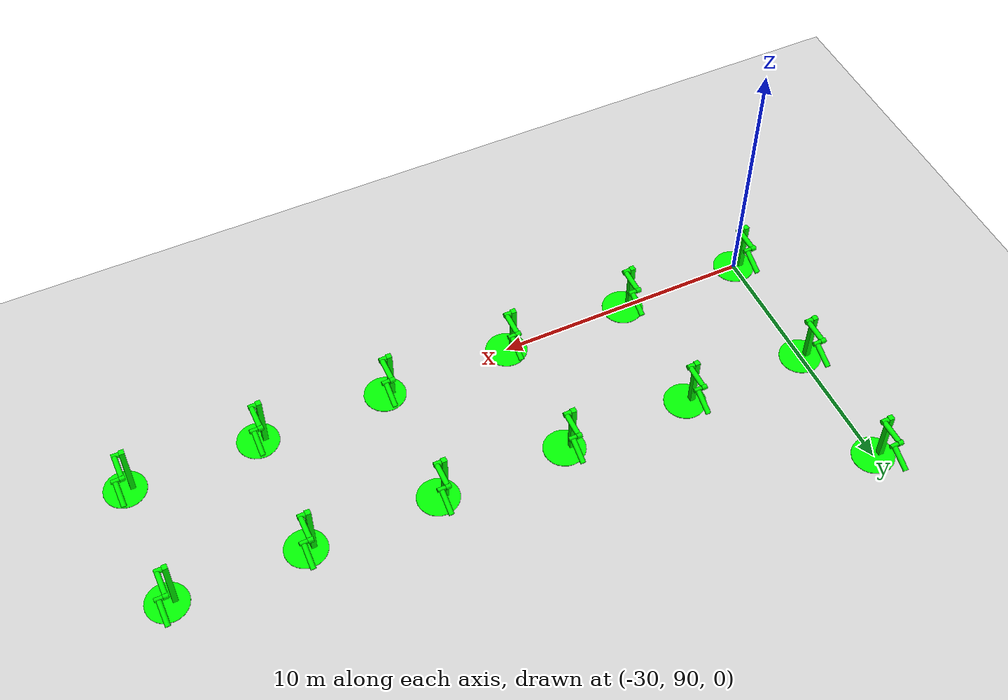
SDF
<sdf version="1.6">
 <world name="double_pendulums">
  <model name="ground_plane">
   <static>true</static>
   <link name="link">
    <collision name="collision">
     <geometry><plane><normal>0 0 1</normal><size>100 100</size></plane></geometry>
    </collision>
    <visual name="visual">
     <geometry><plane><normal>0 0 1</normal><size>100 100</size></plane></geometry>
     <material>
      <ambient>0.8 0.8 0.8 1</ambient>
      <diffuse>0.8 0.8 0.8 1</diffuse>
      <specular>0.8 0.8 0.8 1</specular>
     </material>
    </visual>
   </link>
  </model>
  <model name="dbl_pendulum_454">
   <pose>-30 90 0 0 0 0</pose>
   <link name="base">
    <inertial><mass>100</mass></inertial>
    <visual name="vis_plate_on_ground">
     <pose>0 0 0.01 0 0 0</pose>
     <geometry><cylinder><radius>0.8</radius><length>0.02</length></cylinder></geometry>
     <material><ambient>0 1 0 1</ambient><diffuse>0 1 0 1</diffuse><specular>0 1 0 1</specular></material>
    </visual>
    <visual name="vis_pole">
     <pose>-0.275 0 1.1 0 0 0</pose>
     <geometry><box><size>0.2 0.2 2.2</size></box></geometry>
     <material><ambient>0 1 0 1</ambient><diffuse>0 1 0 1</diffuse><specular>0 1 0 1</specular></material>
    </visual>
    <collision name="col_plate_on_ground">
     <pose>0 0 0.01 0 0 0</pose>
     <geometry><cylinder><radius>0.8</radius><length>0.02</length></cylinder></geometry>
    </collision>
    <collision name="col_pole">
     <pose>-0.275 0 1.1 0 0 0</pose>
     <geometry><box><size>0.2 0.2 2.2</size></box></geometry>
    </collision>
   </link>
   <link name="upper_link">
    <pose>0 0 2.1 -1.5708 0 0</pose>
    <inertial><pose>0 0 0.5 0 0 0</pose></inertial>
    <visual name="vis_upper_joint">
     <pose>-0.05 0 0 0 1.5708 0</pose>
     <geometry><cylinder><radius>0.1</radius><length>0.3</length></cylinder></geometry>
     <material><ambient>0 1 0 1</ambient><diffuse>0 1 0 1</diffuse><specular>0 1 0 1</specular></material>
    </visual>
    <visual name="vis_lower_joint">
     <pose>0 0 1.0 0 1.5708 0</pose>
     <geometry><cylinder><radius>0.1</radius><length>0.2</length></cylinder></geometry>
     <material><ambient>0 1 0 1</ambient><diffuse>0 1 0 1</diffuse><specular>0 1 0 1</specular></material>
    </visual>
    <visual name="vis_cylinder">
     <pose>0 0 0.5 0 0 0</pose>
     <geometry><cylinder><radius>0.1</radius><length>0.9</length></cylinder></geometry>
     <material><ambient>0 1 0 1</ambient><diffuse>0 1 0 1</diffuse><specular>0 1 0 1</specular></material>
    </visual>
    <collision name="col_upper_joint">
     <pose>-0.05 0 0 0 1.5708 0</pose>
     <geometry><cylinder><radius>0.1</radius><length>0.3</length></cylinder></geometry>
    </collision>
    <collision name="col_lower_joint">
     <pose>0 0 1.0 0 1.5708 0</pose>
     <geometry><cylinder><radius>0.1</radius><length>0.2</length></cylinder></geometry>
    </collision>
    <collision name="col_cylinder">
     <pose>0 0 0.5 0 0 0</pose>
     <geometry><cylinder><radius>0.1</radius><length>0.9</length></cylinder></geometry>
    </collision>
   </link>
   <link name="lower_link">
    <pose>0.25 1.0 2.1 -2 0 0</pose>
    <inertial><pose>0 0 0.5 0 0 0</pose></inertial>
    <visual name="vis_lower_joint">
     <pose>0 0 0 0 1.5708 0</pose>
     <geometry><cylinder><radius>0.08</radius><length>0.3</length></cylinder></geometry>
     <material><ambient>0 1 0 1</ambient><diffuse>0 1 0 1</diffuse><specular>0 1 0 1</specular></material>
    </visual>
    <visual name="vis_cylinder">
     <pose>0 0 0.5 0 0 0</pose>
     <geometry><cylinder><radius>0.1</radius><length>0.9</length></cylinder></geometry>
     <material><ambient>0 1 0 1</ambient><diffuse>0 1 0 1</diffuse><specular>0 1 0 1</specular></material>
    </visual>
    <collision name="col_lower_joint">
     <pose>0 0 0 0 1.5708 0</pose>
     <geometry><cylinder><radius>0.08</radius><length>0.3</length></cylinder></geometry>
    </collision>
    <collision name="col_cylinder">
     <pose>0 0 0.5 0 0 0</pose>
     <geometry><cylinder><radius>0.1</radius><length>0.9</length></cylinder></geometry>
    </collision>
   </link>
   <joint name="upper_joint" type="revolute">
    <parent>base</parent>
    <child>upper_link</child>
    <axis><xyz>1.0 0 0</xyz></axis>
   </joint>
   <joint name="lower_joint" type="revolute">
    <parent>upper_link</parent>
    <child>lower_link</child>
    <axis><xyz>1.0 0 0</xyz></axis>
   </joint>
  </model>
  <model name="dbl_pendulum_455">
   <pose>-25 90 0 0 0 0</pose>
   <link name="base">
    <inertial><mass>100</mass></inertial>
    <visual name="vis_plate_on_ground">
     <pose>0 0 0.01 0 0 0</pose>
     <geometry><cylinder><radius>0.8</radius><length>0.02</length></cylinder></geometry>
     <material><ambient>0 1 0 1</ambient><diffuse>0 1 0 1</diffuse><specular>0 1 0 1</specular></material>
    </visual>
    <visual name="vis_pole">
     <pose>-0.275 0 1.1 0 0 0</pose>
     <geometry><box><size>0.2 0.2 2.2</size></box></geometry>
     <material><ambient>0 1 0 1</ambient><diffuse>0 1 0 1</diffuse><specular>0 1 0 1</specular></material>
    </visual>
    <collision name="col_plate_on_ground">
     <pose>0 0 0.01 0 0 0</pose>
     <geometry><cylinder><radius>0.8</radius><length>0.02</length></cylinder></geometry>
    </collision>
    <collision name="col_pole">
     <pose>-0.275 0 1.1 0 0 0</pose>
     <geometry><box><size>0.2 0.2 2.2</size></box></geometry>
    </collision>
   </link>
   <link name="upper_link">
    <pose>0 0 2.1 -1.5708 0 0</pose>
    <inertial><pose>0 0 0.5 0 0 0</pose></inertial>
    <visual name="vis_upper_joint">
     <pose>-0.05 0 0 0 1.5708 0</pose>
     <geometry><cylinder><radius>0.1</radius><length>0.3</length></cylinder></geometry>
     <material><ambient>0 1 0 1</ambient><diffuse>0 1 0 1</diffuse><specular>0 1 0 1</specular></material>
    </visual>
    <visual name="vis_lower_joint">
     <pose>0 0 1.0 0 1.5708 0</pose>
     <geometry><cylinder><radius>0.1</radius><length>0.2</length></cylinder></geometry>
     <material><ambient>0 1 0 1</ambient><diffuse>0 1 0 1</diffuse><specular>0 1 0 1</specular></material>
    </visual>
    <visual name="vis_cylinder">
     <pose>0 0 0.5 0 0 0</pose>
     <geometry><cylinder><radius>0.1</radius><length>0.9</length></cylinder></geometry>
     <material><ambient>0 1 0 1</ambient><diffuse>0 1 0 1</diffuse><specular>0 1 0 1</specular></material>
    </visual>
    <collision name="col_upper_joint">
     <pose>-0.05 0 0 0 1.5708 0</pose>
     <geometry><cylinder><radius>0.1</radius><length>0.3</length></cylinder></geometry>
    </collision>
    <collision name="col_lower_joint">
     <pose>0 0 1.0 0 1.5708 0</pose>
     <geometry><cylinder><radius>0.1</radius><length>0.2</length></cylinder></geometry>
    </collision>
    <collision name="col_cylinder">
     <pose>0 0 0.5 0 0 0</pose>
     <geometry><cylinder><radius>0.1</radius><length>0.9</length></cylinder></geometry>
    </collision>
   </link>
   <link name="lower_link">
    <pose>0.25 1.0 2.1 -2 0 0</pose>
    <inertial><pose>0 0 0.5 0 0 0</pose></inertial>
    <visual name="vis_lower_joint">
     <pose>0 0 0 0 1.5708 0</pose>
     <geometry><cylinder><radius>0.08</radius><length>0.3</length></cylinder></geometry>
     <material><ambient>0 1 0 1</ambient><diffuse>0 1 0 1</diffuse><specular>0 1 0 1</specular></material>
    </visual>
    <visual name="vis_cylinder">
     <pose>0 0 0.5 0 0 0</pose>
     <geometry><cylinder><radius>0.1</radius><length>0.9</length></cylinder></geometry>
     <material><ambient>0 1 0 1</ambient><diffuse>0 1 0 1</diffuse><specular>0 1 0 1</specular></material>
    </visual>
    <collision name="col_lower_joint">
     <pose>0 0 0 0 1.5708 0</pose>
     <geometry><cylinder><radius>0.08</radius><length>0.3</length></cylinder></geometry>
    </collision>
    <collision name="col_cylinder">
     <pose>0 0 0.5 0 0 0</pose>
     <geometry><cylinder><radius>0.1</radius><length>0.9</length></cylinder></geometry>
    </collision>
   </link>
   <joint name="upper_joint" type="revolute">
    <parent>base</parent>
    <child>upper_link</child>
    <axis><xyz>1.0 0 0</xyz></axis>
   </joint>
   <joint name="lower_joint" type="revolute">
    <parent>upper_link</parent>
    <child>lower_link</child>
    <axis><xyz>1.0 0 0</xyz></axis>
   </joint>
  </model>
  <model name="dbl_pendulum_456">
   <pose>-20 90 0 0 0 0</pose>
   <link name="base">
    <inertial><mass>100</mass></inertial>
    <visual name="vis_plate_on_ground">
     <pose>0 0 0.01 0 0 0</pose>
     <geometry><cylinder><radius>0.8</radius><length>0.02</length></cylinder></geometry>
     <material><ambient>0 1 0 1</ambient><diffuse>0 1 0 1</diffuse><specular>0 1 0 1</specular></material>
    </visual>
    <visual name="vis_pole">
     <pose>-0.275 0 1.1 0 0 0</pose>
     <geometry><box><size>0.2 0.2 2.2</size></box></geometry>
     <material><ambient>0 1 0 1</ambient><diffuse>0 1 0 1</diffuse><specular>0 1 0 1</specular></material>
    </visual>
    <collision name="col_plate_on_ground">
     <pose>0 0 0.01 0 0 0</pose>
     <geometry><cylinder><radius>0.8</radius><length>0.02</length></cylinder></geometry>
    </collision>
    <collision name="col_pole">
     <pose>-0.275 0 1.1 0 0 0</pose>
     <geometry><box><size>0.2 0.2 2.2</size></box></geometry>
    </collision>
   </link>
   <link name="upper_link">
    <pose>0 0 2.1 -1.5708 0 0</pose>
    <inertial><pose>0 0 0.5 0 0 0</pose></inertial>
    <visual name="vis_upper_joint">
     <pose>-0.05 0 0 0 1.5708 0</pose>
     <geometry><cylinder><radius>0.1</radius><length>0.3</length></cylinder></geometry>
     <material><ambient>0 1 0 1</ambient><diffuse>0 1 0 1</diffuse><specular>0 1 0 1</specular></material>
    </visual>
    <visual name="vis_lower_joint">
     <pose>0 0 1.0 0 1.5708 0</pose>
     <geometry><cylinder><radius>0.1</radius><length>0.2</length></cylinder></geometry>
     <material><ambient>0 1 0 1</ambient><diffuse>0 1 0 1</diffuse><specular>0 1 0 1</specular></material>
    </visual>
    <visual name="vis_cylinder">
     <pose>0 0 0.5 0 0 0</pose>
     <geometry><cylinder><radius>0.1</radius><length>0.9</length></cylinder></geometry>
     <material><ambient>0 1 0 1</ambient><diffuse>0 1 0 1</diffuse><specular>0 1 0 1</specular></material>
    </visual>
    <collision name="col_upper_joint">
     <pose>-0.05 0 0 0 1.5708 0</pose>
     <geometry><cylinder><radius>0.1</radius><length>0.3</length></cylinder></geometry>
    </collision>
    <collision name="col_lower_joint">
     <pose>0 0 1.0 0 1.5708 0</pose>
     <geometry><cylinder><radius>0.1</radius><length>0.2</length></cylinder></geometry>
    </collision>
    <collision name="col_cylinder">
     <pose>0 0 0.5 0 0 0</pose>
     <geometry><cylinder><radius>0.1</radius><length>0.9</length></cylinder></geometry>
    </collision>
   </link>
   <link name="lower_link">
    <pose>0.25 1.0 2.1 -2 0 0</pose>
    <inertial><pose>0 0 0.5 0 0 0</pose></inertial>
    <visual name="vis_lower_joint">
     <pose>0 0 0 0 1.5708 0</pose>
     <geometry><cylinder><radius>0.08</radius><length>0.3</length></cylinder></geometry>
     <material><ambient>0 1 0 1</ambient><diffuse>0 1 0 1</diffuse><specular>0 1 0 1</specular></material>
    </visual>
    <visual name="vis_cylinder">
     <pose>0 0 0.5 0 0 0</pose>
     <geometry><cylinder><radius>0.1</radius><length>0.9</length></cylinder></geometry>
     <material><ambient>0 1 0 1</ambient><diffuse>0 1 0 1</diffuse><specular>0 1 0 1</specular></material>
    </visual>
    <collision name="col_lower_joint">
     <pose>0 0 0 0 1.5708 0</pose>
     <geometry><cylinder><radius>0.08</radius><length>0.3</length></cylinder></geometry>
    </collision>
    <collision name="col_cylinder">
     <pose>0 0 0.5 0 0 0</pose>
     <geometry><cylinder><radius>0.1</radius><length>0.9</length></cylinder></geometry>
    </collision>
   </link>
   <joint name="upper_joint" type="revolute">
    <parent>base</parent>
    <child>upper_link</child>
    <axis><xyz>1.0 0 0</xyz></axis>
   </joint>
   <joint name="lower_joint" type="revolute">
    <parent>upper_link</parent>
    <child>lower_link</child>
    <axis><xyz>1.0 0 0</xyz></axis>
   </joint>
  </model>
  <model name="dbl_pendulum_457">
   <pose>-15 90 0 0 0 0</pose>
   <link name="base">
    <inertial><mass>100</mass></inertial>
    <visual name="vis_plate_on_ground">
     <pose>0 0 0.01 0 0 0</pose>
     <geometry><cylinder><radius>0.8</radius><length>0.02</length></cylinder></geometry>
     <material><ambient>0 1 0 1</ambient><diffuse>0 1 0 1</diffuse><specular>0 1 0 1</specular></material>
    </visual>
    <visual name="vis_pole">
     <pose>-0.275 0 1.1 0 0 0</pose>
     <geometry><box><size>0.2 0.2 2.2</size></box></geometry>
     <material><ambient>0 1 0 1</ambient><diffuse>0 1 0 1</diffuse><specular>0 1 0 1</specular></material>
    </visual>
    <collision name="col_plate_on_ground">
     <pose>0 0 0.01 0 0 0</pose>
     <geometry><cylinder><radius>0.8</radius><length>0.02</length></cylinder></geometry>
    </collision>
    <collision name="col_pole">
     <pose>-0.275 0 1.1 0 0 0</pose>
     <geometry><box><size>0.2 0.2 2.2</size></box></geometry>
    </collision>
   </link>
   <link name="upper_link">
    <pose>0 0 2.1 -1.5708 0 0</pose>
    <inertial><pose>0 0 0.5 0 0 0</pose></inertial>
    <visual name="vis_upper_joint">
     <pose>-0.05 0 0 0 1.5708 0</pose>
     <geometry><cylinder><radius>0.1</radius><length>0.3</length></cylinder></geometry>
     <material><ambient>0 1 0 1</ambient><diffuse>0 1 0 1</diffuse><specular>0 1 0 1</specular></material>
    </visual>
    <visual name="vis_lower_joint">
     <pose>0 0 1.0 0 1.5708 0</pose>
     <geometry><cylinder><radius>0.1</radius><length>0.2</length></cylinder></geometry>
     <material><ambient>0 1 0 1</ambient><diffuse>0 1 0 1</diffuse><specular>0 1 0 1</specular></material>
    </visual>
    <visual name="vis_cylinder">
     <pose>0 0 0.5 0 0 0</pose>
     <geometry><cylinder><radius>0.1</radius><length>0.9</length></cylinder></geometry>
     <material><ambient>0 1 0 1</ambient><diffuse>0 1 0 1</diffuse><specular>0 1 0 1</specular></material>
    </visual>
    <collision name="col_upper_joint">
     <pose>-0.05 0 0 0 1.5708 0</pose>
     <geometry><cylinder><radius>0.1</radius><length>0.3</length></cylinder></geometry>
    </collision>
    <collision name="col_lower_joint">
     <pose>0 0 1.0 0 1.5708 0</pose>
     <geometry><cylinder><radius>0.1</radius><length>0.2</length></cylinder></geometry>
    </collision>
    <collision name="col_cylinder">
     <pose>0 0 0.5 0 0 0</pose>
     <geometry><cylinder><radius>0.1</radius><length>0.9</length></cylinder></geometry>
    </collision>
   </link>
   <link name="lower_link">
    <pose>0.25 1.0 2.1 -2 0 0</pose>
    <inertial><pose>0 0 0.5 0 0 0</pose></inertial>
    <visual name="vis_lower_joint">
     <pose>0 0 0 0 1.5708 0</pose>
     <geometry><cylinder><radius>0.08</radius><length>0.3</length></cylinder></geometry>
     <material><ambient>0 1 0 1</ambient><diffuse>0 1 0 1</diffuse><specular>0 1 0 1</specular></material>
    </visual>
    <visual name="vis_cylinder">
     <pose>0 0 0.5 0 0 0</pose>
     <geometry><cylinder><radius>0.1</radius><length>0.9</length></cylinder></geometry>
     <material><ambient>0 1 0 1</ambient><diffuse>0 1 0 1</diffuse><specular>0 1 0 1</specular></material>
    </visual>
    <collision name="col_lower_joint">
     <pose>0 0 0 0 1.5708 0</pose>
     <geometry><cylinder><radius>0.08</radius><length>0.3</length></cylinder></geometry>
    </collision>
    <collision name="col_cylinder">
     <pose>0 0 0.5 0 0 0</pose>
     <geometry><cylinder><radius>0.1</radius><length>0.9</length></cylinder></geometry>
    </collision>
   </link>
   <joint name="upper_joint" type="revolute">
    <parent>base</parent>
    <child>upper_link</child>
    <axis><xyz>1.0 0 0</xyz></axis>
   </joint>
   <joint name="lower_joint" type="revolute">
    <parent>upper_link</parent>
    <child>lower_link</child>
    <axis><xyz>1.0 0 0</xyz></axis>
   </joint>
  </model>
  <model name="dbl_pendulum_458">
   <pose>-10 90 0 0 0 0</pose>
   <link name="base">
    <inertial><mass>100</mass></inertial>
    <visual name="vis_plate_on_ground">
     <pose>0 0 0.01 0 0 0</pose>
     <geometry><cylinder><radius>0.8</radius><length>0.02</length></cylinder></geometry>
     <material><ambient>0 1 0 1</ambient><diffuse>0 1 0 1</diffuse><specular>0 1 0 1</specular></material>
    </visual>
    <visual name="vis_pole">
     <pose>-0.275 0 1.1 0 0 0</pose>
     <geometry><box><size>0.2 0.2 2.2</size></box></geometry>
     <material><ambient>0 1 0 1</ambient><diffuse>0 1 0 1</diffuse><specular>0 1 0 1</specular></material>
    </visual>
    <collision name="col_plate_on_ground">
     <pose>0 0 0.01 0 0 0</pose>
     <geometry><cylinder><radius>0.8</radius><length>0.02</length></cylinder></geometry>
    </collision>
    <collision name="col_pole">
     <pose>-0.275 0 1.1 0 0 0</pose>
     <geometry><box><size>0.2 0.2 2.2</size></box></geometry>
    </collision>
   </link>
   <link name="upper_link">
    <pose>0 0 2.1 -1.5708 0 0</pose>
    <inertial><pose>0 0 0.5 0 0 0</pose></inertial>
    <visual name="vis_upper_joint">
     <pose>-0.05 0 0 0 1.5708 0</pose>
     <geometry><cylinder><radius>0.1</radius><length>0.3</length></cylinder></geometry>
     <material><ambient>0 1 0 1</ambient><diffuse>0 1 0 1</diffuse><specular>0 1 0 1</specular></material>
    </visual>
    <visual name="vis_lower_joint">
     <pose>0 0 1.0 0 1.5708 0</pose>
     <geometry><cylinder><radius>0.1</radius><length>0.2</length></cylinder></geometry>
     <material><ambient>0 1 0 1</ambient><diffuse>0 1 0 1</diffuse><specular>0 1 0 1</specular></material>
    </visual>
    <visual name="vis_cylinder">
     <pose>0 0 0.5 0 0 0</pose>
     <geometry><cylinder><radius>0.1</radius><length>0.9</length></cylinder></geometry>
     <material><ambient>0 1 0 1</ambient><diffuse>0 1 0 1</diffuse><specular>0 1 0 1</specular></material>
    </visual>
    <collision name="col_upper_joint">
     <pose>-0.05 0 0 0 1.5708 0</pose>
     <geometry><cylinder><radius>0.1</radius><length>0.3</length></cylinder></geometry>
    </collision>
    <collision name="col_lower_joint">
     <pose>0 0 1.0 0 1.5708 0</pose>
     <geometry><cylinder><radius>0.1</radius><length>0.2</length></cylinder></geometry>
    </collision>
    <collision name="col_cylinder">
     <pose>0 0 0.5 0 0 0</pose>
     <geometry><cylinder><radius>0.1</radius><length>0.9</length></cylinder></geometry>
    </collision>
   </link>
   <link name="lower_link">
    <pose>0.25 1.0 2.1 -2 0 0</pose>
    <inertial><pose>0 0 0.5 0 0 0</pose></inertial>
    <visual name="vis_lower_joint">
     <pose>0 0 0 0 1.5708 0</pose>
     <geometry><cylinder><radius>0.08</radius><length>0.3</length></cylinder></geometry>
     <material><ambient>0 1 0 1</ambient><diffuse>0 1 0 1</diffuse><specular>0 1 0 1</specular></material>
    </visual>
    <visual name="vis_cylinder">
     <pose>0 0 0.5 0 0 0</pose>
     <geometry><cylinder><radius>0.1</radius><length>0.9</length></cylinder></geometry>
     <material><ambient>0 1 0 1</ambient><diffuse>0 1 0 1</diffuse><specular>0 1 0 1</specular></material>
    </visual>
    <collision name="col_lower_joint">
     <pose>0 0 0 0 1.5708 0</pose>
     <geometry><cylinder><radius>0.08</radius><length>0.3</length></cylinder></geometry>
    </collision>
    <collision name="col_cylinder">
     <pose>0 0 0.5 0 0 0</pose>
     <geometry><cylinder><radius>0.1</radius><length>0.9</length></cylinder></geometry>
    </collision>
   </link>
   <joint name="upper_joint" type="revolute">
    <parent>base</parent>
    <child>upper_link</child>
    <axis><xyz>1.0 0 0</xyz></axis>
   </joint>
   <joint name="lower_joint" type="revolute">
    <parent>upper_link</parent>
    <child>lower_link</child>
    <axis><xyz>1.0 0 0</xyz></axis>
   </joint>
  </model>
  <model name="dbl_pendulum_459">
   <pose>-5 90 0 0 0 0</pose>
   <link name="base">
    <inertial><mass>100</mass></inertial>
    <visual name="vis_plate_on_ground">
     <pose>0 0 0.01 0 0 0</pose>
     <geometry><cylinder><radius>0.8</radius><length>0.02</length></cylinder></geometry>
     <material><ambient>0 1 0 1</ambient><diffuse>0 1 0 1</diffuse><specular>0 1 0 1</specular></material>
    </visual>
    <visual name="vis_pole">
     <pose>-0.275 0 1.1 0 0 0</pose>
     <geometry><box><size>0.2 0.2 2.2</size></box></geometry>
     <material><ambient>0 1 0 1</ambient><diffuse>0 1 0 1</diffuse><specular>0 1 0 1</specular></material>
    </visual>
    <collision name="col_plate_on_ground">
     <pose>0 0 0.01 0 0 0</pose>
     <geometry><cylinder><radius>0.8</radius><length>0.02</length></cylinder></geometry>
    </collision>
    <collision name="col_pole">
     <pose>-0.275 0 1.1 0 0 0</pose>
     <geometry><box><size>0.2 0.2 2.2</size></box></geometry>
    </collision>
   </link>
   <link name="upper_link">
    <pose>0 0 2.1 -1.5708 0 0</pose>
    <inertial><pose>0 0 0.5 0 0 0</pose></inertial>
    <visual name="vis_upper_joint">
     <pose>-0.05 0 0 0 1.5708 0</pose>
     <geometry><cylinder><radius>0.1</radius><length>0.3</length></cylinder></geometry>
     <material><ambient>0 1 0 1</ambient><diffuse>0 1 0 1</diffuse><specular>0 1 0 1</specular></material>
    </visual>
    <visual name="vis_lower_joint">
     <pose>0 0 1.0 0 1.5708 0</pose>
     <geometry><cylinder><radius>0.1</radius><length>0.2</length></cylinder></geometry>
     <material><ambient>0 1 0 1</ambient><diffuse>0 1 0 1</diffuse><specular>0 1 0 1</specular></material>
    </visual>
    <visual name="vis_cylinder">
     <pose>0 0 0.5 0 0 0</pose>
     <geometry><cylinder><radius>0.1</radius><length>0.9</length></cylinder></geometry>
     <material><ambient>0 1 0 1</ambient><diffuse>0 1 0 1</diffuse><specular>0 1 0 1</specular></material>
    </visual>
    <collision name="col_upper_joint">
     <pose>-0.05 0 0 0 1.5708 0</pose>
     <geometry><cylinder><radius>0.1</radius><length>0.3</length></cylinder></geometry>
    </collision>
    <collision name="col_lower_joint">
     <pose>0 0 1.0 0 1.5708 0</pose>
     <geometry><cylinder><radius>0.1</radius><length>0.2</length></cylinder></geometry>
    </collision>
    <collision name="col_cylinder">
     <pose>0 0 0.5 0 0 0</pose>
     <geometry><cylinder><radius>0.1</radius><length>0.9</length></cylinder></geometry>
    </collision>
   </link>
   <link name="lower_link">
    <pose>0.25 1.0 2.1 -2 0 0</pose>
    <inertial><pose>0 0 0.5 0 0 0</pose></inertial>
    <visual name="vis_lower_joint">
     <pose>0 0 0 0 1.5708 0</pose>
     <geometry><cylinder><radius>0.08</radius><length>0.3</length></cylinder></geometry>
     <material><ambient>0 1 0 1</ambient><diffuse>0 1 0 1</diffuse><specular>0 1 0 1</specular></material>
    </visual>
    <visual name="vis_cylinder">
     <pose>0 0 0.5 0 0 0</pose>
     <geometry><cylinder><radius>0.1</radius><length>0.9</length></cylinder></geometry>
     <material><ambient>0 1 0 1</ambient><diffuse>0 1 0 1</diffuse><specular>0 1 0 1</specular></material>
    </visual>
    <collision name="col_lower_joint">
     <pose>0 0 0 0 1.5708 0</pose>
     <geometry><cylinder><radius>0.08</radius><length>0.3</length></cylinder></geometry>
    </collision>
    <collision name="col_cylinder">
     <pose>0 0 0.5 0 0 0</pose>
     <geometry><cylinder><radius>0.1</radius><length>0.9</length></cylinder></geometry>
    </collision>
   </link>
   <joint name="upper_joint" type="revolute">
    <parent>base</parent>
    <child>upper_link</child>
    <axis><xyz>1.0 0 0</xyz></axis>
   </joint>
   <joint name="lower_joint" type="revolute">
    <parent>upper_link</parent>
    <child>lower_link</child>
    <axis><xyz>1.0 0 0</xyz></axis>
   </joint>
  </model>
  <model name="dbl_pendulum_479">
   <pose>-30 95 0 0 0 0</pose>
   <link name="base">
    <inertial><mass>100</mass></inertial>
    <visual name="vis_plate_on_ground">
     <pose>0 0 0.01 0 0 0</pose>
     <geometry><cylinder><radius>0.8</radius><length>0.02</length></cylinder></geometry>
     <material><ambient>0 1 0 1</ambient><diffuse>0 1 0 1</diffuse><specular>0 1 0 1</specular></material>
    </visual>
    <visual name="vis_pole">
     <pose>-0.275 0 1.1 0 0 0</pose>
     <geometry><box><size>0.2 0.2 2.2</size></box></geometry>
     <material><ambient>0 1 0 1</ambient><diffuse>0 1 0 1</diffuse><specular>0 1 0 1</specular></material>
    </visual>
    <collision name="col_plate_on_ground">
     <pose>0 0 0.01 0 0 0</pose>
     <geometry><cylinder><radius>0.8</radius><length>0.02</length></cylinder></geometry>
    </collision>
    <collision name="col_pole">
     <pose>-0.275 0 1.1 0 0 0</pose>
     <geometry><box><size>0.2 0.2 2.2</size></box></geometry>
    </collision>
   </link>
   <link name="upper_link">
    <pose>0 0 2.1 -1.5708 0 0</pose>
    <inertial><pose>0 0 0.5 0 0 0</pose></inertial>
    <visual name="vis_upper_joint">
     <pose>-0.05 0 0 0 1.5708 0</pose>
     <geometry><cylinder><radius>0.1</radius><length>0.3</length></cylinder></geometry>
     <material><ambient>0 1 0 1</ambient><diffuse>0 1 0 1</diffuse><specular>0 1 0 1</specular></material>
    </visual>
    <visual name="vis_lower_joint">
     <pose>0 0 1.0 0 1.5708 0</pose>
     <geometry><cylinder><radius>0.1</radius><length>0.2</length></cylinder></geometry>
     <material><ambient>0 1 0 1</ambient><diffuse>0 1 0 1</diffuse><specular>0 1 0 1</specular></material>
    </visual>
    <visual name="vis_cylinder">
     <pose>0 0 0.5 0 0 0</pose>
     <geometry><cylinder><radius>0.1</radius><length>0.9</length></cylinder></geometry>
     <material><ambient>0 1 0 1</ambient><diffuse>0 1 0 1</diffuse><specular>0 1 0 1</specular></material>
    </visual>
    <collision name="col_upper_joint">
     <pose>-0.05 0 0 0 1.5708 0</pose>
     <geometry><cylinder><radius>0.1</radius><length>0.3</length></cylinder></geometry>
    </collision>
    <collision name="col_lower_joint">
     <pose>0 0 1.0 0 1.5708 0</pose>
     <geometry><cylinder><radius>0.1</radius><length>0.2</length></cylinder></geometry>
    </collision>
    <collision name="col_cylinder">
     <pose>0 0 0.5 0 0 0</pose>
     <geometry><cylinder><radius>0.1</radius><length>0.9</length></cylinder></geometry>
    </collision>
   </link>
   <link name="lower_link">
    <pose>0.25 1.0 2.1 -2 0 0</pose>
    <inertial><pose>0 0 0.5 0 0 0</pose></inertial>
    <visual name="vis_lower_joint">
     <pose>0 0 0 0 1.5708 0</pose>
     <geometry><cylinder><radius>0.08</radius><length>0.3</length></cylinder></geometry>
     <material><ambient>0 1 0 1</ambient><diffuse>0 1 0 1</diffuse><specular>0 1 0 1</specular></material>
    </visual>
    <visual name="vis_cylinder">
     <pose>0 0 0.5 0 0 0</pose>
     <geometry><cylinder><radius>0.1</radius><length>0.9</length></cylinder></geometry>
     <material><ambient>0 1 0 1</ambient><diffuse>0 1 0 1</diffuse><specular>0 1 0 1</specular></material>
    </visual>
    <collision name="col_lower_joint">
     <pose>0 0 0 0 1.5708 0</pose>
     <geometry><cylinder><radius>0.08</radius><length>0.3</length></cylinder></geometry>
    </collision>
    <collision name="col_cylinder">
     <pose>0 0 0.5 0 0 0</pose>
     <geometry><cylinder><radius>0.1</radius><length>0.9</length></cylinder></geometry>
    </collision>
   </link>
   <joint name="upper_joint" type="revolute">
    <parent>base</parent>
    <child>upper_link</child>
    <axis><xyz>1.0 0 0</xyz></axis>
   </joint>
   <joint name="lower_joint" type="revolute">
    <parent>upper_link</parent>
    <child>lower_link</child>
    <axis><xyz>1.0 0 0</xyz></axis>
   </joint>
  </model>
  <model name="dbl_pendulum_480">
   <pose>-25 95 0 0 0 0</pose>
   <link name="base">
    <inertial><mass>100</mass></inertial>
    <visual name="vis_plate_on_ground">
     <pose>0 0 0.01 0 0 0</pose>
     <geometry><cylinder><radius>0.8</radius><length>0.02</length></cylinder></geometry>
     <material><ambient>0 1 0 1</ambient><diffuse>0 1 0 1</diffuse><specular>0 1 0 1</specular></material>
    </visual>
    <visual name="vis_pole">
     <pose>-0.275 0 1.1 0 0 0</pose>
     <geometry><box><size>0.2 0.2 2.2</size></box></geometry>
     <material><ambient>0 1 0 1</ambient><diffuse>0 1 0 1</diffuse><specular>0 1 0 1</specular></material>
    </visual>
    <collision name="col_plate_on_ground">
     <pose>0 0 0.01 0 0 0</pose>
     <geometry><cylinder><radius>0.8</radius><length>0.02</length></cylinder></geometry>
    </collision>
    <collision name="col_pole">
     <pose>-0.275 0 1.1 0 0 0</pose>
     <geometry><box><size>0.2 0.2 2.2</size></box></geometry>
    </collision>
   </link>
   <link name="upper_link">
    <pose>0 0 2.1 -1.5708 0 0</pose>
    <inertial><pose>0 0 0.5 0 0 0</pose></inertial>
    <visual name="vis_upper_joint">
     <pose>-0.05 0 0 0 1.5708 0</pose>
     <geometry><cylinder><radius>0.1</radius><length>0.3</length></cylinder></geometry>
     <material><ambient>0 1 0 1</ambient><diffuse>0 1 0 1</diffuse><specular>0 1 0 1</specular></material>
    </visual>
    <visual name="vis_lower_joint">
     <pose>0 0 1.0 0 1.5708 0</pose>
     <geometry><cylinder><radius>0.1</radius><length>0.2</length></cylinder></geometry>
     <material><ambient>0 1 0 1</ambient><diffuse>0 1 0 1</diffuse><specular>0 1 0 1</specular></material>
    </visual>
    <visual name="vis_cylinder">
     <pose>0 0 0.5 0 0 0</pose>
     <geometry><cylinder><radius>0.1</radius><length>0.9</length></cylinder></geometry>
     <material><ambient>0 1 0 1</ambient><diffuse>0 1 0 1</diffuse><specular>0 1 0 1</specular></material>
    </visual>
    <collision name="col_upper_joint">
     <pose>-0.05 0 0 0 1.5708 0</pose>
     <geometry><cylinder><radius>0.1</radius><length>0.3</length></cylinder></geometry>
    </collision>
    <collision name="col_lower_joint">
     <pose>0 0 1.0 0 1.5708 0</pose>
     <geometry><cylinder><radius>0.1</radius><length>0.2</length></cylinder></geometry>
    </collision>
    <collision name="col_cylinder">
     <pose>0 0 0.5 0 0 0</pose>
     <geometry><cylinder><radius>0.1</radius><length>0.9</length></cylinder></geometry>
    </collision>
   </link>
   <link name="lower_link">
    <pose>0.25 1.0 2.1 -2 0 0</pose>
    <inertial><pose>0 0 0.5 0 0 0</pose></inertial>
    <visual name="vis_lower_joint">
     <pose>0 0 0 0 1.5708 0</pose>
     <geometry><cylinder><radius>0.08</radius><length>0.3</length></cylinder></geometry>
     <material><ambient>0 1 0 1</ambient><diffuse>0 1 0 1</diffuse><specular>0 1 0 1</specular></material>
    </visual>
    <visual name="vis_cylinder">
     <pose>0 0 0.5 0 0 0</pose>
     <geometry><cylinder><radius>0.1</radius><length>0.9</length></cylinder></geometry>
     <material><ambient>0 1 0 1</ambient><diffuse>0 1 0 1</diffuse><specular>0 1 0 1</specular></material>
    </visual>
    <collision name="col_lower_joint">
     <pose>0 0 0 0 1.5708 0</pose>
     <geometry><cylinder><radius>0.08</radius><length>0.3</length></cylinder></geometry>
    </collision>
    <collision name="col_cylinder">
     <pose>0 0 0.5 0 0 0</pose>
     <geometry><cylinder><radius>0.1</radius><length>0.9</length></cylinder></geometry>
    </collision>
   </link>
   <joint name="upper_joint" type="revolute">
    <parent>base</parent>
    <child>upper_link</child>
    <axis><xyz>1.0 0 0</xyz></axis>
   </joint>
   <joint name="lower_joint" type="revolute">
    <parent>upper_link</parent>
    <child>lower_link</child>
    <axis><xyz>1.0 0 0</xyz></axis>
   </joint>
  </model>
  <model name="dbl_pendulum_481">
   <pose>-20 95 0 0 0 0</pose>
   <link name="base">
    <inertial><mass>100</mass></inertial>
    <visual name="vis_plate_on_ground">
     <pose>0 0 0.01 0 0 0</pose>
     <geometry><cylinder><radius>0.8</radius><length>0.02</length></cylinder></geometry>
     <material><ambient>0 1 0 1</ambient><diffuse>0 1 0 1</diffuse><specular>0 1 0 1</specular></material>
    </visual>
    <visual name="vis_pole">
     <pose>-0.275 0 1.1 0 0 0</pose>
     <geometry><box><size>0.2 0.2 2.2</size></box></geometry>
     <material><ambient>0 1 0 1</ambient><diffuse>0 1 0 1</diffuse><specular>0 1 0 1</specular></material>
    </visual>
    <collision name="col_plate_on_ground">
     <pose>0 0 0.01 0 0 0</pose>
     <geometry><cylinder><radius>0.8</radius><length>0.02</length></cylinder></geometry>
    </collision>
    <collision name="col_pole">
     <pose>-0.275 0 1.1 0 0 0</pose>
     <geometry><box><size>0.2 0.2 2.2</size></box></geometry>
    </collision>
   </link>
   <link name="upper_link">
    <pose>0 0 2.1 -1.5708 0 0</pose>
    <inertial><pose>0 0 0.5 0 0 0</pose></inertial>
    <visual name="vis_upper_joint">
     <pose>-0.05 0 0 0 1.5708 0</pose>
     <geometry><cylinder><radius>0.1</radius><length>0.3</length></cylinder></geometry>
     <material><ambient>0 1 0 1</ambient><diffuse>0 1 0 1</diffuse><specular>0 1 0 1</specular></material>
    </visual>
    <visual name="vis_lower_joint">
     <pose>0 0 1.0 0 1.5708 0</pose>
     <geometry><cylinder><radius>0.1</radius><length>0.2</length></cylinder></geometry>
     <material><ambient>0 1 0 1</ambient><diffuse>0 1 0 1</diffuse><specular>0 1 0 1</specular></material>
    </visual>
    <visual name="vis_cylinder">
     <pose>0 0 0.5 0 0 0</pose>
     <geometry><cylinder><radius>0.1</radius><length>0.9</length></cylinder></geometry>
     <material><ambient>0 1 0 1</ambient><diffuse>0 1 0 1</diffuse><specular>0 1 0 1</specular></material>
    </visual>
    <collision name="col_upper_joint">
     <pose>-0.05 0 0 0 1.5708 0</pose>
     <geometry><cylinder><radius>0.1</radius><length>0.3</length></cylinder></geometry>
    </collision>
    <collision name="col_lower_joint">
     <pose>0 0 1.0 0 1.5708 0</pose>
     <geometry><cylinder><radius>0.1</radius><length>0.2</length></cylinder></geometry>
    </collision>
    <collision name="col_cylinder">
     <pose>0 0 0.5 0 0 0</pose>
     <geometry><cylinder><radius>0.1</radius><length>0.9</length></cylinder></geometry>
    </collision>
   </link>
   <link name="lower_link">
    <pose>0.25 1.0 2.1 -2 0 0</pose>
    <inertial><pose>0 0 0.5 0 0 0</pose></inertial>
    <visual name="vis_lower_joint">
     <pose>0 0 0 0 1.5708 0</pose>
     <geometry><cylinder><radius>0.08</radius><length>0.3</length></cylinder></geometry>
     <material><ambient>0 1 0 1</ambient><diffuse>0 1 0 1</diffuse><specular>0 1 0 1</specular></material>
    </visual>
    <visual name="vis_cylinder">
     <pose>0 0 0.5 0 0 0</pose>
     <geometry><cylinder><radius>0.1</radius><length>0.9</length></cylinder></geometry>
     <material><ambient>0 1 0 1</ambient><diffuse>0 1 0 1</diffuse><specular>0 1 0 1</specular></material>
    </visual>
    <collision name="col_lower_joint">
     <pose>0 0 0 0 1.5708 0</pose>
     <geometry><cylinder><radius>0.08</radius><length>0.3</length></cylinder></geometry>
    </collision>
    <collision name="col_cylinder">
     <pose>0 0 0.5 0 0 0</pose>
     <geometry><cylinder><radius>0.1</radius><length>0.9</length></cylinder></geometry>
    </collision>
   </link>
   <joint name="upper_joint" type="revolute">
    <parent>base</parent>
    <child>upper_link</child>
    <axis><xyz>1.0 0 0</xyz></axis>
   </joint>
   <joint name="lower_joint" type="revolute">
    <parent>upper_link</parent>
    <child>lower_link</child>
    <axis><xyz>1.0 0 0</xyz></axis>
   </joint>
  </model>
  <model name="dbl_pendulum_482">
   <pose>-15 95 0 0 0 0</pose>
   <link name="base">
    <inertial><mass>100</mass></inertial>
    <visual name="vis_plate_on_ground">
     <pose>0 0 0.01 0 0 0</pose>
     <geometry><cylinder><radius>0.8</radius><length>0.02</length></cylinder></geometry>
     <material><ambient>0 1 0 1</ambient><diffuse>0 1 0 1</diffuse><specular>0 1 0 1</specular></material>
    </visual>
    <visual name="vis_pole">
     <pose>-0.275 0 1.1 0 0 0</pose>
     <geometry><box><size>0.2 0.2 2.2</size></box></geometry>
     <material><ambient>0 1 0 1</ambient><diffuse>0 1 0 1</diffuse><specular>0 1 0 1</specular></material>
    </visual>
    <collision name="col_plate_on_ground">
     <pose>0 0 0.01 0 0 0</pose>
     <geometry><cylinder><radius>0.8</radius><length>0.02</length></cylinder></geometry>
    </collision>
    <collision name="col_pole">
     <pose>-0.275 0 1.1 0 0 0</pose>
     <geometry><box><size>0.2 0.2 2.2</size></box></geometry>
    </collision>
   </link>
   <link name="upper_link">
    <pose>0 0 2.1 -1.5708 0 0</pose>
    <inertial><pose>0 0 0.5 0 0 0</pose></inertial>
    <visual name="vis_upper_joint">
     <pose>-0.05 0 0 0 1.5708 0</pose>
     <geometry><cylinder><radius>0.1</radius><length>0.3</length></cylinder></geometry>
     <material><ambient>0 1 0 1</ambient><diffuse>0 1 0 1</diffuse><specular>0 1 0 1</specular></material>
    </visual>
    <visual name="vis_lower_joint">
     <pose>0 0 1.0 0 1.5708 0</pose>
     <geometry><cylinder><radius>0.1</radius><length>0.2</length></cylinder></geometry>
     <material><ambient>0 1 0 1</ambient><diffuse>0 1 0 1</diffuse><specular>0 1 0 1</specular></material>
    </visual>
    <visual name="vis_cylinder">
     <pose>0 0 0.5 0 0 0</pose>
     <geometry><cylinder><radius>0.1</radius><length>0.9</length></cylinder></geometry>
     <material><ambient>0 1 0 1</ambient><diffuse>0 1 0 1</diffuse><specular>0 1 0 1</specular></material>
    </visual>
    <collision name="col_upper_joint">
     <pose>-0.05 0 0 0 1.5708 0</pose>
     <geometry><cylinder><radius>0.1</radius><length>0.3</length></cylinder></geometry>
    </collision>
    <collision name="col_lower_joint">
     <pose>0 0 1.0 0 1.5708 0</pose>
     <geometry><cylinder><radius>0.1</radius><length>0.2</length></cylinder></geometry>
    </collision>
    <collision name="col_cylinder">
     <pose>0 0 0.5 0 0 0</pose>
     <geometry><cylinder><radius>0.1</radius><length>0.9</length></cylinder></geometry>
    </collision>
   </link>
   <link name="lower_link">
    <pose>0.25 1.0 2.1 -2 0 0</pose>
    <inertial><pose>0 0 0.5 0 0 0</pose></inertial>
    <visual name="vis_lower_joint">
     <pose>0 0 0 0 1.5708 0</pose>
     <geometry><cylinder><radius>0.08</radius><length>0.3</length></cylinder></geometry>
     <material><ambient>0 1 0 1</ambient><diffuse>0 1 0 1</diffuse><specular>0 1 0 1</specular></material>
    </visual>
    <visual name="vis_cylinder">
     <pose>0 0 0.5 0 0 0</pose>
     <geometry><cylinder><radius>0.1</radius><length>0.9</length></cylinder></geometry>
     <material><ambient>0 1 0 1</ambient><diffuse>0 1 0 1</diffuse><specular>0 1 0 1</specular></material>
    </visual>
    <collision name="col_lower_joint">
     <pose>0 0 0 0 1.5708 0</pose>
     <geometry><cylinder><radius>0.08</radius><length>0.3</length></cylinder></geometry>
    </collision>
    <collision name="col_cylinder">
     <pose>0 0 0.5 0 0 0</pose>
     <geometry><cylinder><radius>0.1</radius><length>0.9</length></cylinder></geometry>
    </collision>
   </link>
   <joint name="upper_joint" type="revolute">
    <parent>base</parent>
    <child>upper_link</child>
    <axis><xyz>1.0 0 0</xyz></axis>
   </joint>
   <joint name="lower_joint" type="revolute">
    <parent>upper_link</parent>
    <child>lower_link</child>
    <axis><xyz>1.0 0 0</xyz></axis>
   </joint>
  </model>
  <model name="dbl_pendulum_483">
   <pose>-10 95 0 0 0 0</pose>
   <link name="base">
    <inertial><mass>100</mass></inertial>
    <visual name="vis_plate_on_ground">
     <pose>0 0 0.01 0 0 0</pose>
     <geometry><cylinder><radius>0.8</radius><length>0.02</length></cylinder></geometry>
     <material><ambient>0 1 0 1</ambient><diffuse>0 1 0 1</diffuse><specular>0 1 0 1</specular></material>
    </visual>
    <visual name="vis_pole">
     <pose>-0.275 0 1.1 0 0 0</pose>
     <geometry><box><size>0.2 0.2 2.2</size></box></geometry>
     <material><ambient>0 1 0 1</ambient><diffuse>0 1 0 1</diffuse><specular>0 1 0 1</specular></material>
    </visual>
    <collision name="col_plate_on_ground">
     <pose>0 0 0.01 0 0 0</pose>
     <geometry><cylinder><radius>0.8</radius><length>0.02</length></cylinder></geometry>
    </collision>
    <collision name="col_pole">
     <pose>-0.275 0 1.1 0 0 0</pose>
     <geometry><box><size>0.2 0.2 2.2</size></box></geometry>
    </collision>
   </link>
   <link name="upper_link">
    <pose>0 0 2.1 -1.5708 0 0</pose>
    <inertial><pose>0 0 0.5 0 0 0</pose></inertial>
    <visual name="vis_upper_joint">
     <pose>-0.05 0 0 0 1.5708 0</pose>
     <geometry><cylinder><radius>0.1</radius><length>0.3</length></cylinder></geometry>
     <material><ambient>0 1 0 1</ambient><diffuse>0 1 0 1</diffuse><specular>0 1 0 1</specular></material>
    </visual>
    <visual name="vis_lower_joint">
     <pose>0 0 1.0 0 1.5708 0</pose>
     <geometry><cylinder><radius>0.1</radius><length>0.2</length></cylinder></geometry>
     <material><ambient>0 1 0 1</ambient><diffuse>0 1 0 1</diffuse><specular>0 1 0 1</specular></material>
    </visual>
    <visual name="vis_cylinder">
     <pose>0 0 0.5 0 0 0</pose>
     <geometry><cylinder><radius>0.1</radius><length>0.9</length></cylinder></geometry>
     <material><ambient>0 1 0 1</ambient><diffuse>0 1 0 1</diffuse><specular>0 1 0 1</specular></material>
    </visual>
    <collision name="col_upper_joint">
     <pose>-0.05 0 0 0 1.5708 0</pose>
     <geometry><cylinder><radius>0.1</radius><length>0.3</length></cylinder></geometry>
    </collision>
    <collision name="col_lower_joint">
     <pose>0 0 1.0 0 1.5708 0</pose>
     <geometry><cylinder><radius>0.1</radius><length>0.2</length></cylinder></geometry>
    </collision>
    <collision name="col_cylinder">
     <pose>0 0 0.5 0 0 0</pose>
     <geometry><cylinder><radius>0.1</radius><length>0.9</length></cylinder></geometry>
    </collision>
   </link>
   <link name="lower_link">
    <pose>0.25 1.0 2.1 -2 0 0</pose>
    <inertial><pose>0 0 0.5 0 0 0</pose></inertial>
    <visual name="vis_lower_joint">
     <pose>0 0 0 0 1.5708 0</pose>
     <geometry><cylinder><radius>0.08</radius><length>0.3</length></cylinder></geometry>
     <material><ambient>0 1 0 1</ambient><diffuse>0 1 0 1</diffuse><specular>0 1 0 1</specular></material>
    </visual>
    <visual name="vis_cylinder">
     <pose>0 0 0.5 0 0 0</pose>
     <geometry><cylinder><radius>0.1</radius><length>0.9</length></cylinder></geometry>
     <material><ambient>0 1 0 1</ambient><diffuse>0 1 0 1</diffuse><specular>0 1 0 1</specular></material>
    </visual>
    <collision name="col_lower_joint">
     <pose>0 0 0 0 1.5708 0</pose>
     <geometry><cylinder><radius>0.08</radius><length>0.3</length></cylinder></geometry>
    </collision>
    <collision name="col_cylinder">
     <pose>0 0 0.5 0 0 0</pose>
     <geometry><cylinder><radius>0.1</radius><length>0.9</length></cylinder></geometry>
    </collision>
   </link>
   <joint name="upper_joint" type="revolute">
    <parent>base</parent>
    <child>upper_link</child>
    <axis><xyz>1.0 0 0</xyz></axis>
   </joint>
   <joint name="lower_joint" type="revolute">
    <parent>upper_link</parent>
    <child>lower_link</child>
    <axis><xyz>1.0 0 0</xyz></axis>
   </joint>
  </model>
  <model name="dbl_pendulum_484">
   <pose>-5 95 0 0 0 0</pose>
   <link name="base">
    <inertial><mass>100</mass></inertial>
    <visual name="vis_plate_on_ground">
     <pose>0 0 0.01 0 0 0</pose>
     <geometry><cylinder><radius>0.8</radius><length>0.02</length></cylinder></geometry>
     <material><ambient>0 1 0 1</ambient><diffuse>0 1 0 1</diffuse><specular>0 1 0 1</specular></material>
    </visual>
    <visual name="vis_pole">
     <pose>-0.275 0 1.1 0 0 0</pose>
     <geometry><box><size>0.2 0.2 2.2</size></box></geometry>
     <material><ambient>0 1 0 1</ambient><diffuse>0 1 0 1</diffuse><specular>0 1 0 1</specular></material>
    </visual>
    <collision name="col_plate_on_ground">
     <pose>0 0 0.01 0 0 0</pose>
     <geometry><cylinder><radius>0.8</radius><length>0.02</length></cylinder></geometry>
    </collision>
    <collision name="col_pole">
     <pose>-0.275 0 1.1 0 0 0</pose>
     <geometry><box><size>0.2 0.2 2.2</size></box></geometry>
    </collision>
   </link>
   <link name="upper_link">
    <pose>0 0 2.1 -1.5708 0 0</pose>
    <inertial><pose>0 0 0.5 0 0 0</pose></inertial>
    <visual name="vis_upper_joint">
     <pose>-0.05 0 0 0 1.5708 0</pose>
     <geometry><cylinder><radius>0.1</radius><length>0.3</length></cylinder></geometry>
     <material><ambient>0 1 0 1</ambient><diffuse>0 1 0 1</diffuse><specular>0 1 0 1</specular></material>
    </visual>
    <visual name="vis_lower_joint">
     <pose>0 0 1.0 0 1.5708 0</pose>
     <geometry><cylinder><radius>0.1</radius><length>0.2</length></cylinder></geometry>
     <material><ambient>0 1 0 1</ambient><diffuse>0 1 0 1</diffuse><specular>0 1 0 1</specular></material>
    </visual>
    <visual name="vis_cylinder">
     <pose>0 0 0.5 0 0 0</pose>
     <geometry><cylinder><radius>0.1</radius><length>0.9</length></cylinder></geometry>
     <material><ambient>0 1 0 1</ambient><diffuse>0 1 0 1</diffuse><specular>0 1 0 1</specular></material>
    </visual>
    <collision name="col_upper_joint">
     <pose>-0.05 0 0 0 1.5708 0</pose>
     <geometry><cylinder><radius>0.1</radius><length>0.3</length></cylinder></geometry>
    </collision>
    <collision name="col_lower_joint">
     <pose>0 0 1.0 0 1.5708 0</pose>
     <geometry><cylinder><radius>0.1</radius><length>0.2</length></cylinder></geometry>
    </collision>
    <collision name="col_cylinder">
     <pose>0 0 0.5 0 0 0</pose>
     <geometry><cylinder><radius>0.1</radius><length>0.9</length></cylinder></geometry>
    </collision>
   </link>
   <link name="lower_link">
    <pose>0.25 1.0 2.1 -2 0 0</pose>
    <inertial><pose>0 0 0.5 0 0 0</pose></inertial>
    <visual name="vis_lower_joint">
     <pose>0 0 0 0 1.5708 0</pose>
     <geometry><cylinder><radius>0.08</radius><length>0.3</length></cylinder></geometry>
     <material><ambient>0 1 0 1</ambient><diffuse>0 1 0 1</diffuse><specular>0 1 0 1</specular></material>
    </visual>
    <visual name="vis_cylinder">
     <pose>0 0 0.5 0 0 0</pose>
     <geometry><cylinder><radius>0.1</radius><length>0.9</length></cylinder></geometry>
     <material><ambient>0 1 0 1</ambient><diffuse>0 1 0 1</diffuse><specular>0 1 0 1</specular></material>
    </visual>
    <collision name="col_lower_joint">
     <pose>0 0 0 0 1.5708 0</pose>
     <geometry><cylinder><radius>0.08</radius><length>0.3</length></cylinder></geometry>
    </collision>
    <collision name="col_cylinder">
     <pose>0 0 0.5 0 0 0</pose>
     <geometry><cylinder><radius>0.1</radius><length>0.9</length></cylinder></geometry>
    </collision>
   </link>
   <joint name="upper_joint" type="revolute">
    <parent>base</parent>
    <child>upper_link</child>
    <axis><xyz>1.0 0 0</xyz></axis>
   </joint>
   <joint name="lower_joint" type="revolute">
    <parent>upper_link</parent>
    <child>lower_link</child>
    <axis><xyz>1.0 0 0</xyz></axis>
   </joint>
  </model>
  <model name="dbl_pendulum_504">
   <pose>-30 100 0 0 0 0</pose>
   <link name="base">
    <inertial><mass>100</mass></inertial>
    <visual name="vis_plate_on_ground">
     <pose>0 0 0.01 0 0 0</pose>
     <geometry><cylinder><radius>0.8</radius><length>0.02</length></cylinder></geometry>
     <material><ambient>0 1 0 1</ambient><diffuse>0 1 0 1</diffuse><specular>0 1 0 1</specular></material>
    </visual>
    <visual name="vis_pole">
     <pose>-0.275 0 1.1 0 0 0</pose>
     <geometry><box><size>0.2 0.2 2.2</size></box></geometry>
     <material><ambient>0 1 0 1</ambient><diffuse>0 1 0 1</diffuse><specular>0 1 0 1</specular></material>
    </visual>
    <collision name="col_plate_on_ground">
     <pose>0 0 0.01 0 0 0</pose>
     <geometry><cylinder><radius>0.8</radius><length>0.02</length></cylinder></geometry>
    </collision>
    <collision name="col_pole">
     <pose>-0.275 0 1.1 0 0 0</pose>
     <geometry><box><size>0.2 0.2 2.2</size></box></geometry>
    </collision>
   </link>
   <link name="upper_link">
    <pose>0 0 2.1 -1.5708 0 0</pose>
    <inertial><pose>0 0 0.5 0 0 0</pose></inertial>
    <visual name="vis_upper_joint">
     <pose>-0.05 0 0 0 1.5708 0</pose>
     <geometry><cylinder><radius>0.1</radius><length>0.3</length></cylinder></geometry>
     <material><ambient>0 1 0 1</ambient><diffuse>0 1 0 1</diffuse><specular>0 1 0 1</specular></material>
    </visual>
    <visual name="vis_lower_joint">
     <pose>0 0 1.0 0 1.5708 0</pose>
     <geometry><cylinder><radius>0.1</radius><length>0.2</length></cylinder></geometry>
     <material><ambient>0 1 0 1</ambient><diffuse>0 1 0 1</diffuse><specular>0 1 0 1</specular></material>
    </visual>
    <visual name="vis_cylinder">
     <pose>0 0 0.5 0 0 0</pose>
     <geometry><cylinder><radius>0.1</radius><length>0.9</length></cylinder></geometry>
     <material><ambient>0 1 0 1</ambient><diffuse>0 1 0 1</diffuse><specular>0 1 0 1</specular></material>
    </visual>
    <collision name="col_upper_joint">
     <pose>-0.05 0 0 0 1.5708 0</pose>
     <geometry><cylinder><radius>0.1</radius><length>0.3</length></cylinder></geometry>
    </collision>
    <collision name="col_lower_joint">
     <pose>0 0 1.0 0 1.5708 0</pose>
     <geometry><cylinder><radius>0.1</radius><length>0.2</length></cylinder></geometry>
    </collision>
    <collision name="col_cylinder">
     <pose>0 0 0.5 0 0 0</pose>
     <geometry><cylinder><radius>0.1</radius><length>0.9</length></cylinder></geometry>
    </collision>
   </link>
   <link name="lower_link">
    <pose>0.25 1.0 2.1 -2 0 0</pose>
    <inertial><pose>0 0 0.5 0 0 0</pose></inertial>
    <visual name="vis_lower_joint">
     <pose>0 0 0 0 1.5708 0</pose>
     <geometry><cylinder><radius>0.08</radius><length>0.3</length></cylinder></geometry>
     <material><ambient>0 1 0 1</ambient><diffuse>0 1 0 1</diffuse><specular>0 1 0 1</specular></material>
    </visual>
    <visual name="vis_cylinder">
     <pose>0 0 0.5 0 0 0</pose>
     <geometry><cylinder><radius>0.1</radius><length>0.9</length></cylinder></geometry>
     <material><ambient>0 1 0 1</ambient><diffuse>0 1 0 1</diffuse><specular>0 1 0 1</specular></material>
    </visual>
    <collision name="col_lower_joint">
     <pose>0 0 0 0 1.5708 0</pose>
     <geometry><cylinder><radius>0.08</radius><length>0.3</length></cylinder></geometry>
    </collision>
    <collision name="col_cylinder">
     <pose>0 0 0.5 0 0 0</pose>
     <geometry><cylinder><radius>0.1</radius><length>0.9</length></cylinder></geometry>
    </collision>
   </link>
   <joint name="upper_joint" type="revolute">
    <parent>base</parent>
    <child>upper_link</child>
    <axis><xyz>1.0 0 0</xyz></axis>
   </joint>
   <joint name="lower_joint" type="revolute">
    <parent>upper_link</parent>
    <child>lower_link</child>
    <axis><xyz>1.0 0 0</xyz></axis>
   </joint>
  </model>
 </world>
</sdf>
